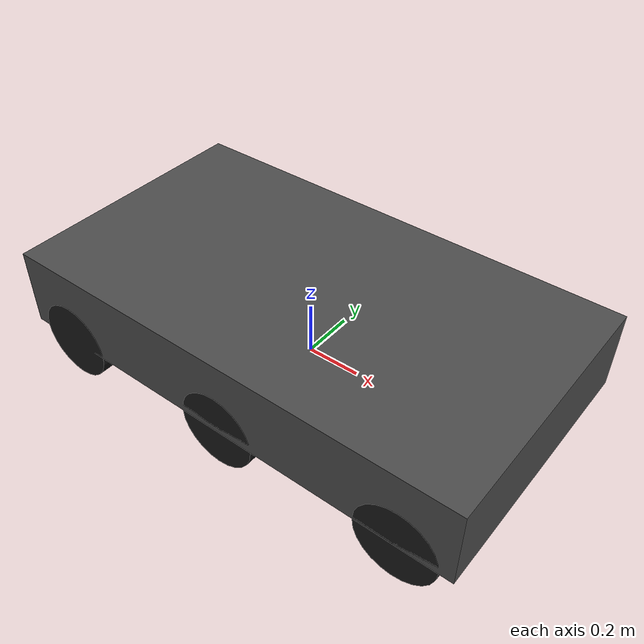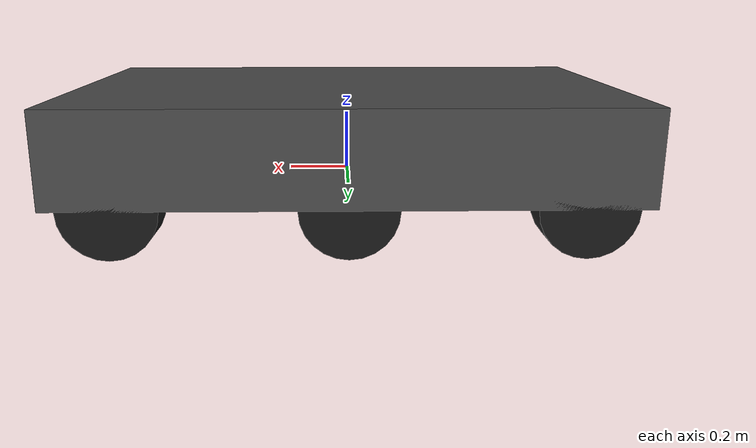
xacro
<?xml version="1.0"?>
<robot xmlns:xacro="http://www.ros.org/wiki/xacro" name="six_wheel_skid_ugv">
  <xacro:include filename="materials.xacro" />

  <link name="base_footprint"/>
  <joint name="base_footprint_to_chassis" type="fixed">
    <parent link="base_footprint"/>
    <child link="chassis_link"/>
    <origin xyz="0 0 0" rpy="0 0 0"/>
  </joint>

  <link name="chassis_link">
    <visual>
      <geometry>
        <box size="1.8 1.0 0.3"/>
      </geometry>
      <material name="Gray">
        <color rgba="0.3 0.3 0.3 1.0"/>
      </material>
      <origin xyz="0 0 0.15" rpy="0 0 0"/>
    </visual>
    <collision>
      <geometry>
        <box size="1.8 1.0 0.3"/>
      </geometry>
      <origin xyz="0 0 0.15" rpy="0 0 0"/>
    </collision>
    <inertial>
      <mass value="60"/>
      <inertia ixx="1" ixy="0" ixz="0" iyy="1" iyz="0" izz="1"/>
      <origin xyz="0 0 0.15"/>
    </inertial>
  </link>

  <xacro:macro name="wheel" params="prefix x y z">
    <link name="${prefix}_wheel_link">
      <visual>
        <geometry>
          <cylinder radius="0.15" length="0.1"/>
        </geometry>
        <material name="Black">
          <color rgba="0.1 0.1 0.1 1.0"/>
        </material>
        <origin xyz="0 0 0" rpy="1.5708 0 0"/>
      </visual>
      <collision>
        <geometry>
          <cylinder radius="0.15" length="0.1"/>
        </geometry>
        <origin xyz="0 0 0" rpy="1.5708 0 0"/>
      </collision>
      <inertial>
        <mass value="5"/>
        <inertia ixx="0.05" ixy="0" ixz="0" iyy="0.05" iyz="0" izz="0.05"/>
        <origin xyz="0 0 0"/>
      </inertial>
    </link>

    <joint name="${prefix}_wheel_joint" type="continuous">
      <parent link="chassis_link"/>
      <child link="${prefix}_wheel_link"/>
      <origin xyz="${x} ${y} ${z}" rpy="0 0 0"/>
      <axis xyz="0 1 0"/>
    </joint>
  </xacro:macro>

  <xacro:wheel prefix="fl" x="0.7" y="0.45" z="0"/>
  <xacro:wheel prefix="ml" x="0.0" y="0.45" z="0"/>
  <xacro:wheel prefix="rl" x="-0.7" y="0.45" z="0"/>

  <xacro:wheel prefix="fr" x="0.7" y="-0.45" z="0"/>
  <xacro:wheel prefix="mr" x="0.0" y="-0.45" z="0"/>
  <xacro:wheel prefix="rr" x="-0.7" y="-0.45" z="0"/>
</robot>

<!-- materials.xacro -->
<robot xmlns:xacro="http://www.ros.org/wiki/xacro">

  <material name="Grey">
    <color rgba="0.6 0.6 0.6 1"/>
  </material>

  <material name="Black">
    <color rgba="0.1 0.1 0.1 1"/>
  </material>

  <material name="Blue">
    <color rgba="0.0 0.0 1.0 1"/>
  </material>

  <material name="Green">
    <color rgba="0.0 1.0 0.0 1"/>
  </material>

</robot>
